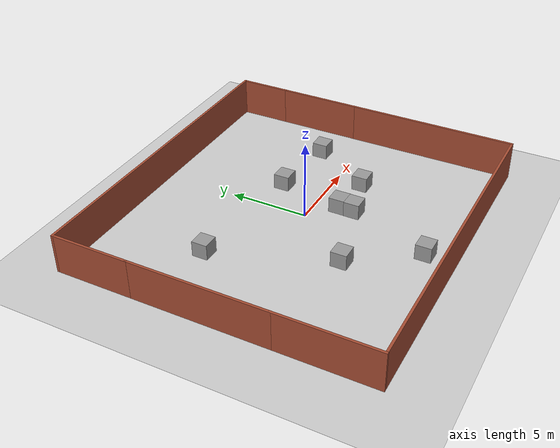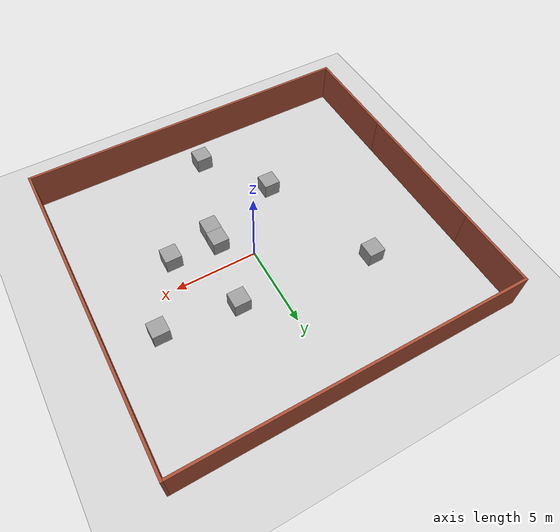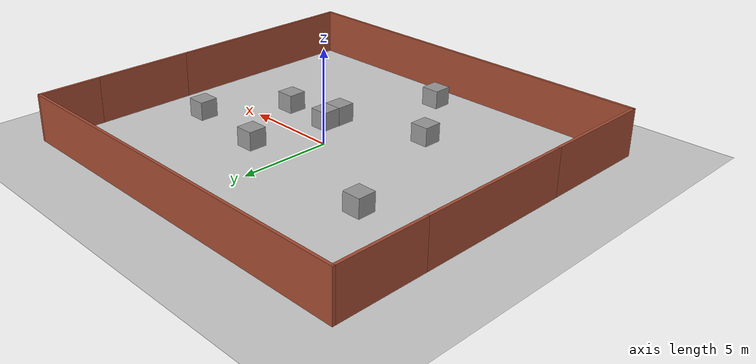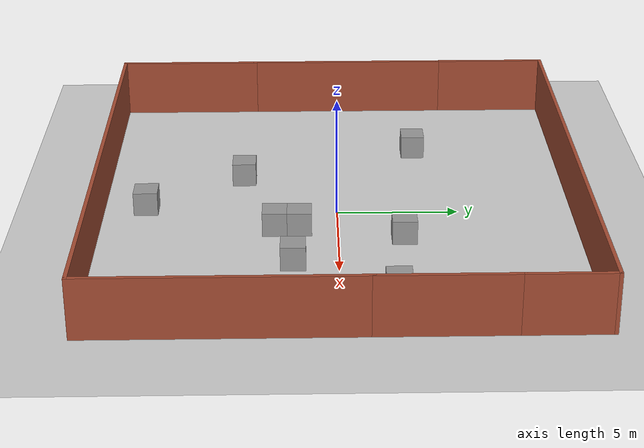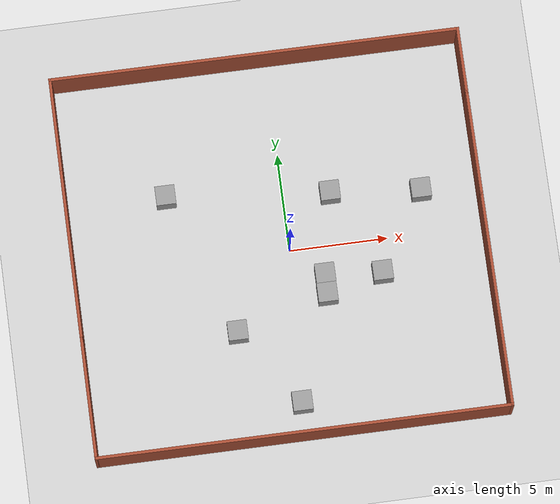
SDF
<sdf version="1.6">
 <world name="racecar_tunnel">
  <scene><ambient>0.75 0.75 0.75 1</ambient><background>0.7 0.7 0.7 1</background><shadows>1</shadows></scene>
  <light name="sun" type="directional">
   <pose>0 0 10 0 -0 0</pose>
   <diffuse>0.8 0.8 0.8 1</diffuse>
   <specular>0.1 0.1 0.1 1</specular>
   <attenuation>
    <range>1000</range>
    <constant>0.9</constant>
    <linear>0.01</linear>
    <quadratic>0.001</quadratic>
   </attenuation>
   <direction>-0.5 0.5 -1</direction>
  </light>
  <model name="ground_plane">
   <static>1</static>
   <link name="link">
    <collision name="collision">
     <geometry><plane><normal>0 0 1</normal><size>150 150</size></plane></geometry>
     <surface><friction><ode><mu>100</mu><mu2>50</mu2></ode></friction></surface>
    </collision>
    <visual name="visual">
     <cast_shadows>0</cast_shadows>
     <geometry><plane><normal>0 0 1</normal><size>150 150</size></plane></geometry>
     <material>
      <script><uri>file://media/materials/scripts/gazebo.material</uri><name>Gazebo/Grey</name></script>
     </material>
    </visual>
   </link>
  </model>
  <gravity>0 0 -9.8</gravity>
  <magnetic_field>6e-06 2.3e-05 -4.2e-05</magnetic_field>
  <atmosphere type="adiabatic"/>
  <physics name="default_physics" default="0" type="ode">
   <max_step_size>0.001</max_step_size>
   <real_time_factor>1</real_time_factor>
   <real_time_update_rate>1000</real_time_update_rate>
  </physics>
  <spherical_coordinates>
   <surface_model>EARTH_WGS84</surface_model>
   <latitude_deg>0</latitude_deg>
   <longitude_deg>0</longitude_deg>
   <elevation>0</elevation>
   <heading_deg>0</heading_deg>
  </spherical_coordinates>
  <model name="unit_box_0">
   <pose>1.58193 -1.55235 0.499995 1e-05 -0 -0.00071</pose>
   <link name="link">
    <inertial>
     <mass>1</mass>
     <inertia>
      <ixx>0.166667</ixx>
      <ixy>0</ixy>
      <ixz>0</ixz>
      <iyy>0.166667</iyy>
      <iyz>0</iyz>
      <izz>0.166667</izz>
     </inertia>
    </inertial>
    <collision name="collision"><geometry><box><size>1 1 1</size></box></geometry></collision>
    <visual name="visual">
     <geometry><box><size>1 1 1</size></box></geometry>
     <material>
      <script><name>Gazebo/Grey</name><uri>file://media/materials/scripts/gazebo.material</uri></script>
     </material>
    </visual>
   </link>
  </model>
  <model name="unit_box_1">
   <pose>4.48459 -1.79487 0.499995 0 1e-05 0</pose>
   <link name="link">
    <inertial>
     <mass>1</mass>
     <inertia>
      <ixx>0.166667</ixx>
      <ixy>0</ixy>
      <ixz>0</ixz>
      <iyy>0.166667</iyy>
      <iyz>0</iyz>
      <izz>0.166667</izz>
     </inertia>
    </inertial>
    <collision name="collision"><geometry><box><size>1 1 1</size></box></geometry></collision>
    <visual name="visual">
     <geometry><box><size>1 1 1</size></box></geometry>
     <material>
      <script><name>Gazebo/Grey</name><uri>file://media/materials/scripts/gazebo.material</uri></script>
     </material>
    </visual>
   </link>
  </model>
  <model name="unit_box_2">
   <pose>2.38143 2.65562 0.499995 -1e-05 0 0</pose>
   <link name="link">
    <inertial>
     <mass>1</mass>
     <inertia>
      <ixx>0.166667</ixx>
      <ixy>0</ixy>
      <ixz>0</ixz>
      <iyy>0.166667</iyy>
      <iyz>0</iyz>
      <izz>0.166667</izz>
     </inertia>
    </inertial>
    <collision name="collision"><geometry><box><size>1 1 1</size></box></geometry></collision>
    <visual name="visual">
     <geometry><box><size>1 1 1</size></box></geometry>
     <material>
      <script><name>Gazebo/Grey</name><uri>file://media/materials/scripts/gazebo.material</uri></script>
     </material>
    </visual>
   </link>
  </model>
  <model name="unit_box_3">
   <pose>-3.17717 -3.92097 0.499995 0 1e-05 0</pose>
   <link name="link">
    <inertial>
     <mass>1</mass>
     <inertia>
      <ixx>0.166667</ixx>
      <ixy>0</ixy>
      <ixz>0</ixz>
      <iyy>0.166667</iyy>
      <iyz>0</iyz>
      <izz>0.166667</izz>
     </inertia>
    </inertial>
    <collision name="collision"><geometry><box><size>1 1 1</size></box></geometry></collision>
    <visual name="visual">
     <geometry><box><size>1 1 1</size></box></geometry>
     <material>
      <script><name>Gazebo/Grey</name><uri>file://media/materials/scripts/gazebo.material</uri></script>
     </material>
    </visual>
   </link>
  </model>
  <model name="unit_box_4">
   <pose>1.56565 -2.55235 0.499995 0 1e-05 -0.000706</pose>
   <link name="link">
    <inertial>
     <mass>1</mass>
     <inertia>
      <ixx>0.166667</ixx>
      <ixy>0</ixy>
      <ixz>0</ixz>
      <iyy>0.166667</iyy>
      <iyz>0</iyz>
      <izz>0.166667</izz>
     </inertia>
    </inertial>
    <collision name="collision"><geometry><box><size>1 1 1</size></box></geometry></collision>
    <visual name="visual">
     <geometry><box><size>1 1 1</size></box></geometry>
     <material>
      <script><name>Gazebo/Grey</name><uri>file://media/materials/scripts/gazebo.material</uri></script>
     </material>
    </visual>
   </link>
  </model>
  <model name="unit_box_5">
   <pose>6.97933 2.19605 0.499995 0 1e-05 0</pose>
   <link name="link">
    <inertial>
     <mass>1</mass>
     <inertia>
      <ixx>0.166667</ixx>
      <ixy>0</ixy>
      <ixz>0</ixz>
      <iyy>0.166667</iyy>
      <iyz>0</iyz>
      <izz>0.166667</izz>
     </inertia>
    </inertial>
    <collision name="collision"><geometry><box><size>1 1 1</size></box></geometry></collision>
    <visual name="visual">
     <geometry><box><size>1 1 1</size></box></geometry>
     <material>
      <script><name>Gazebo/Grey</name><uri>file://media/materials/scripts/gazebo.material</uri></script>
     </material>
    </visual>
   </link>
  </model>
  <model name="unit_box_6">
   <pose>-0.416977 -7.9048 0.499995 -1e-05 0 0</pose>
   <link name="link">
    <inertial>
     <mass>1</mass>
     <inertia>
      <ixx>0.166667</ixx>
      <ixy>0</ixy>
      <ixz>0</ixz>
      <iyy>0.166667</iyy>
      <iyz>0</iyz>
      <izz>0.166667</izz>
     </inertia>
    </inertial>
    <collision name="collision"><geometry><box><size>1 1 1</size></box></geometry></collision>
    <visual name="visual">
     <geometry><box><size>1 1 1</size></box></geometry>
     <material>
      <script><name>Gazebo/Grey</name><uri>file://media/materials/scripts/gazebo.material</uri></script>
     </material>
    </visual>
   </link>
  </model>
  <model name="unit_box_7">
   <pose>-5.92282 3.47657 0.499995 0 -1e-05 0</pose>
   <link name="link">
    <inertial>
     <mass>1</mass>
     <inertia>
      <ixx>0.166667</ixx>
      <ixy>0</ixy>
      <ixz>0</ixz>
      <iyy>0.166667</iyy>
      <iyz>0</iyz>
      <izz>0.166667</izz>
     </inertia>
    </inertial>
    <collision name="collision"><geometry><box><size>1 1 1</size></box></geometry></collision>
    <visual name="visual">
     <geometry><box><size>1 1 1</size></box></geometry>
     <material>
      <script><name>Gazebo/Grey</name><uri>file://media/materials/scripts/gazebo.material</uri></script>
     </material>
    </visual>
   </link>
  </model>
  <model name="racecar_cones">
   <pose>-0.5553 0.04266 0 0 -0 0</pose>
   <link name="Wall_10">
    <collision name="Wall_10_Collision">
     <geometry><box><size>6.25 0.15 2.5</size></box></geometry>
     <pose>0 0 1.25 0 -0 0</pose>
    </collision>
    <visual name="Wall_10_Visual">
     <pose>0 0 1.25 0 -0 0</pose>
     <geometry><box><size>6.25 0.15 2.5</size></box></geometry>
     <material>
      <script><uri>file://media/materials/scripts/gazebo.material</uri><name>Gazebo/Bricks</name></script>
      <ambient>1 1 1 1</ambient>
     </material>
    </visual>
    <pose>-10.425 -6.725 0 0 0 -1.5708</pose>
   </link>
   <link name="Wall_11">
    <collision name="Wall_11_Collision">
     <geometry><box><size>21 0.15 2.5</size></box></geometry>
     <pose>0 0 1.25 0 -0 0</pose>
    </collision>
    <visual name="Wall_11_Visual">
     <pose>0 0 1.25 0 -0 0</pose>
     <geometry><box><size>21 0.15 2.5</size></box></geometry>
     <material>
      <script><uri>file://media/materials/scripts/gazebo.material</uri><name>Gazebo/Bricks</name></script>
      <ambient>1 1 1 1</ambient>
     </material>
    </visual>
    <pose>0 -9.775 0 0 -0 0</pose>
   </link>
   <link name="Wall_13">
    <collision name="Wall_13_Collision">
     <geometry><box><size>11 0.15 2.5</size></box></geometry>
     <pose>0 0 1.25 0 -0 0</pose>
    </collision>
    <visual name="Wall_13_Visual">
     <pose>0 0 1.25 0 -0 0</pose>
     <geometry><box><size>11 0.15 2.5</size></box></geometry>
     <material>
      <script><uri>file://media/materials/scripts/gazebo.material</uri><name>Gazebo/Bricks</name></script>
      <ambient>1 1 1 1</ambient>
     </material>
    </visual>
    <pose>10.425 -4.35 0 0 -0 1.5708</pose>
   </link>
   <link name="Wall_15">
    <collision name="Wall_15_Collision">
     <geometry><box><size>5.5 0.15 2.5</size></box></geometry>
     <pose>0 0 1.25 0 -0 0</pose>
    </collision>
    <visual name="Wall_15_Visual">
     <pose>0 0 1.25 0 -0 0</pose>
     <geometry><box><size>5.5 0.15 2.5</size></box></geometry>
     <material>
      <script><uri>file://media/materials/scripts/gazebo.material</uri><name>Gazebo/Bricks</name></script>
      <ambient>1 1 1 1</ambient>
     </material>
    </visual>
    <pose>10.425 3.75 0 0 -0 1.5708</pose>
   </link>
   <link name="Wall_18">
    <collision name="Wall_18_Collision">
     <geometry><box><size>3.5 0.15 2.5</size></box></geometry>
     <pose>0 0 1.25 0 -0 0</pose>
    </collision>
    <visual name="Wall_18_Visual">
     <pose>0 0 1.25 0 -0 0</pose>
     <geometry><box><size>3.5 0.15 2.5</size></box></geometry>
     <material>
      <script><uri>file://media/materials/scripts/gazebo.material</uri><name>Gazebo/Bricks</name></script>
      <ambient>1 1 1 1</ambient>
     </material>
    </visual>
    <pose>10.425 8.1 0 0 -0 1.5708</pose>
   </link>
   <link name="Wall_19">
    <collision name="Wall_19_Collision">
     <geometry><box><size>21 0.15 2.5</size></box></geometry>
     <pose>0 0 1.25 0 -0 0</pose>
    </collision>
    <visual name="Wall_19_Visual">
     <pose>0 0 1.25 0 -0 0</pose>
     <geometry><box><size>21 0.15 2.5</size></box></geometry>
     <material>
      <script><uri>file://media/materials/scripts/gazebo.material</uri><name>Gazebo/Bricks</name></script>
      <ambient>1 1 1 1</ambient>
     </material>
    </visual>
    <pose>0 9.775 0 0 -0 3.14159</pose>
   </link>
   <link name="Wall_20">
    <collision name="Wall_20_Collision">
     <geometry><box><size>5 0.15 2.5</size></box></geometry>
     <pose>0 0 1.25 0 -0 0</pose>
    </collision>
    <visual name="Wall_20_Visual">
     <pose>0 0 1.25 0 -0 0</pose>
     <geometry><box><size>5 0.15 2.5</size></box></geometry>
     <material>
      <script><uri>file://media/materials/scripts/gazebo.material</uri><name>Gazebo/Bricks</name></script>
      <ambient>1 1 1 1</ambient>
     </material>
    </visual>
    <pose>-10.425 7.35 0 0 0 -1.5708</pose>
   </link>
   <link name="Wall_7">
    <collision name="Wall_7_Collision">
     <geometry><box><size>8.75 0.15 2.5</size></box></geometry>
     <pose>0 0 1.25 0 -0 0</pose>
    </collision>
    <visual name="Wall_7_Visual">
     <pose>0 0 1.25 0 -0 0</pose>
     <geometry><box><size>8.75 0.15 2.5</size></box></geometry>
     <material>
      <script><uri>file://media/materials/scripts/gazebo.material</uri><name>Gazebo/Bricks</name></script>
      <ambient>1 1 1 1</ambient>
     </material>
    </visual>
    <pose>-10.425 0.625 0 0 0 -1.5708</pose>
   </link>
   <static>1</static>
  </model>
 </world>
</sdf>
